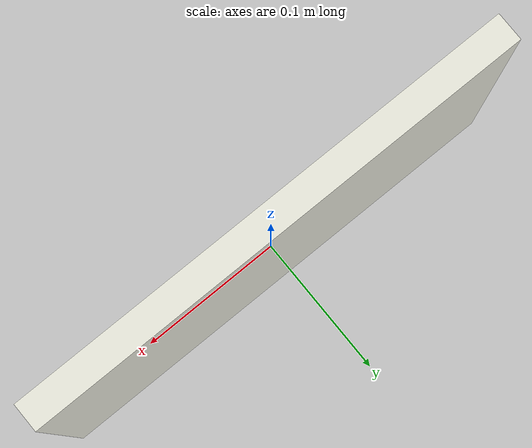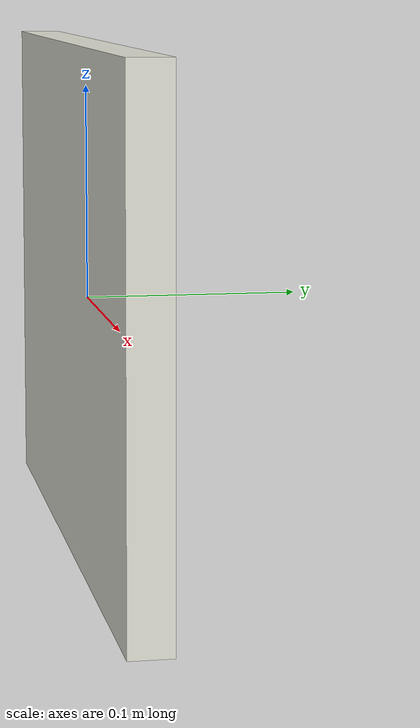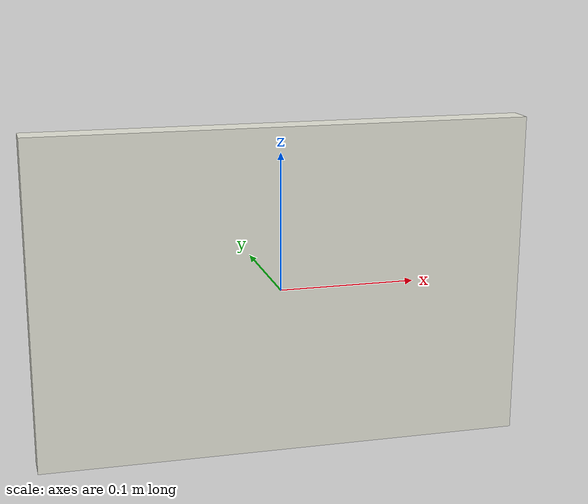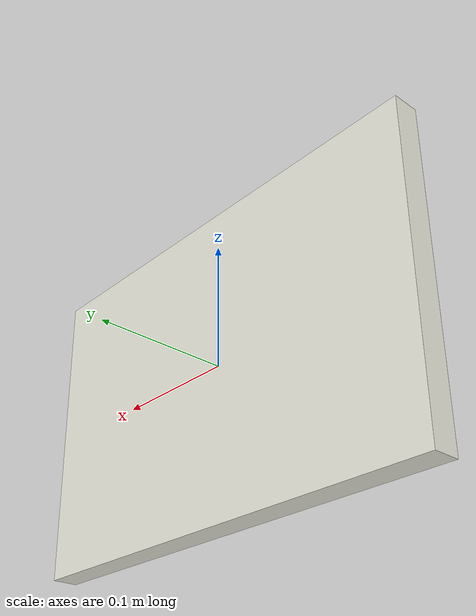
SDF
<?xml version="1.0"?>
<sdf version="1.7">
  <model name="calibration_board">
    <static>true</static>
    <link name="link">
      <visual name="visual">
        <geometry>
          <box>
            <size>0.36 0.02 0.24</size>
          </box>
        </geometry>
        <material>
          <ambient>0.9 0.9 0.85 1</ambient>
          <diffuse>0.9 0.9 0.85 1</diffuse>
        </material>
      </visual>
      <collision name="collision">
        <geometry>
          <box>
            <size>0.36 0.02 0.24</size>
          </box>
        </geometry>
      </collision>
    </link>
  </model>
</sdf>
